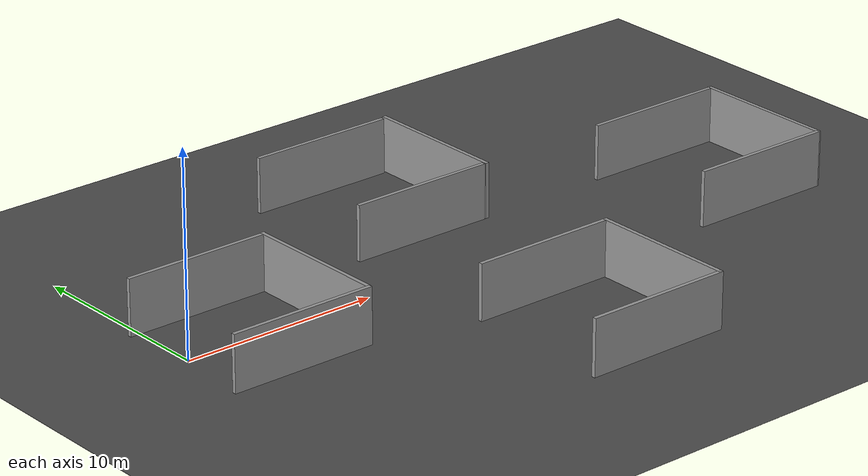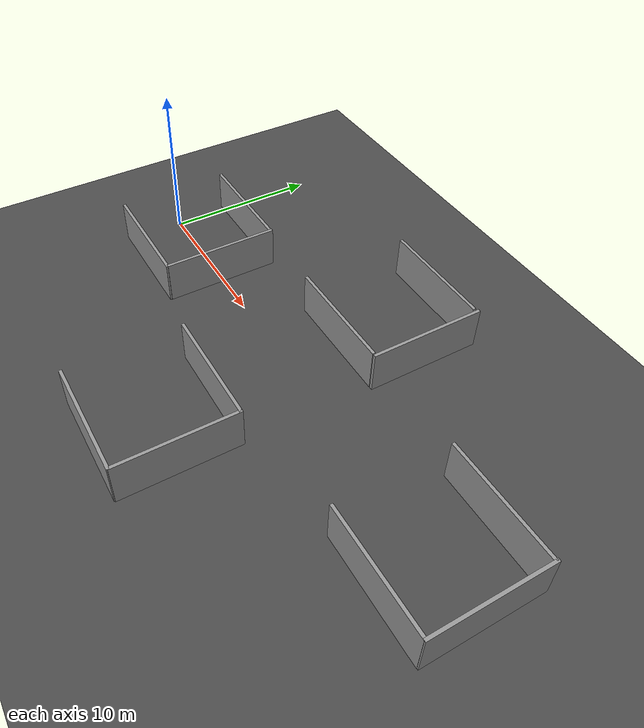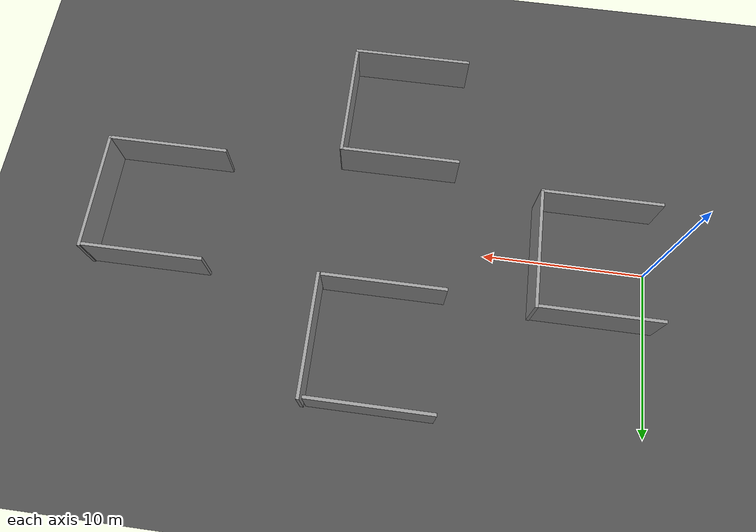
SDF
<sdf version="1.6">
 <world name="default">
  <scene>
   <sky><clouds><speed>20</speed></clouds></sky>
   <ambient>0.4 0.4 0.4 1</ambient>
   <background>0.7 0.7 0.7 1</background>
   <shadows>1</shadows>
  </scene>
  <light name="sun" type="directional">
   <pose>0 0 10 0 -0 0</pose>
   <diffuse>0.8 0.8 0.8 1</diffuse>
   <specular>0.1 0.1 0.1 1</specular>
   <attenuation>
    <range>1000</range>
    <constant>0.9</constant>
    <linear>0.01</linear>
    <quadratic>0.001</quadratic>
   </attenuation>
   <direction>-0.5 0.5 -1</direction>
  </light>
  <model name="asphalt_plane">
   <pose>0.103434 0.05762 0 0 -0 0</pose>
   <static>1</static>
   <link name="link">
    <collision name="collision"><geometry><box><size>10131.8 10000 0.01</size></box></geometry></collision>
    <visual name="visual">
     <cast_shadows>0</cast_shadows>
     <geometry><box><size>101.318 100 0.01</size></box></geometry>
     <material>
      <script>
       <uri>file:///home/jtorde/Desktop/ws/src/acl-ros-extra-v2/acl_sim/urdf/grass/materials/scripts</uri>
       <uri>file:///home/jtorde/Desktop/ws/src/acl-ros-extra-v2/acl_sim/urdf/grass/materials/textures</uri>
       <name>vrc/asphalt</name>
      </script>
     </material>
    </visual>
   </link>
  </model>
  <gravity>0 0 -9.8</gravity>
  <magnetic_field>6e-06 2.3e-05 -4.2e-05</magnetic_field>
  <atmosphere type="adiabatic"/>
  <physics name="default_physics" default="0" type="ode">
   <max_step_size>0.001</max_step_size>
   <real_time_factor>1</real_time_factor>
   <real_time_update_rate>1000</real_time_update_rate>
  </physics>
  <spherical_coordinates>
   <surface_model>EARTH_WGS84</surface_model>
   <latitude_deg>0</latitude_deg>
   <longitude_deg>0</longitude_deg>
   <elevation>0</elevation>
   <heading_deg>0</heading_deg>
  </spherical_coordinates>
  <light name="user_directional_light_0" type="directional">
   <pose>34.9855 -1.80031 1 0 -0 0</pose>
   <diffuse>0.5 0.5 0.5 1</diffuse>
   <specular>0.1 0.1 0.1 1</specular>
   <direction>0.1 0.1 -0.9</direction>
   <attenuation>
    <range>20</range>
    <constant>0.5</constant>
    <linear>0.01</linear>
    <quadratic>0.001</quadratic>
   </attenuation>
  </light>
  <light name="user_directional_light_1" type="directional">
   <pose>65.0809 -34.7744 1 0 -0 0</pose>
   <diffuse>0.5 0.5 0.5 1</diffuse>
   <specular>0.1 0.1 0.1 1</specular>
   <direction>0.1 0.1 -0.9</direction>
   <attenuation>
    <range>20</range>
    <constant>0.5</constant>
    <linear>0.01</linear>
    <quadratic>0.001</quadratic>
   </attenuation>
  </light>
  <light name="user_directional_light_2" type="directional">
   <pose>27.7796 -25.3494 1 0 -0 0</pose>
   <diffuse>0.5 0.5 0.5 1</diffuse>
   <specular>0.1 0.1 0.1 1</specular>
   <direction>0.1 0.1 -0.9</direction>
   <attenuation>
    <range>20</range>
    <constant>0.5</constant>
    <linear>0.01</linear>
    <quadratic>0.001</quadratic>
   </attenuation>
  </light>
  <model name="grey_wall">
   <static>1</static>
   <link name="link">
    <pose>0 0 1.4 0 -0 0</pose>
    <collision name="collision"><geometry><box><size>7.5 0.2 2.8</size></box></geometry></collision>
    <visual name="visual">
     <cast_shadows>0</cast_shadows>
     <geometry><box><size>7.5 0.2 2.8</size></box></geometry>
     <material>
      <script>
       <uri>model://grey_wall/materials/scripts</uri>
       <uri>model://grey_wall/materials/textures</uri>
       <name>vrc/grey_wall</name>
      </script>
     </material>
    </visual>
   </link>
   <pose>3.26061 3.63488 -0.002785 0 -0 0</pose>
  </model>
  <model name="grey_wall_clone">
   <static>1</static>
   <link name="link">
    <pose>0 0 1.4 0 -0 0</pose>
    <collision name="collision"><geometry><box><size>7.5 0.2 2.8</size></box></geometry></collision>
    <visual name="visual">
     <cast_shadows>0</cast_shadows>
     <geometry><box><size>7.5 0.2 2.8</size></box></geometry>
     <material>
      <script>
       <uri>model://grey_wall/materials/scripts</uri>
       <uri>model://grey_wall/materials/textures</uri>
       <name>vrc/grey_wall</name>
      </script>
     </material>
    </visual>
   </link>
   <pose>7.00157 0.018635 0 0 0 -1.56755</pose>
  </model>
  <model name="grey_wall_clone_0">
   <static>1</static>
   <link name="link">
    <pose>0 0 1.4 0 -0 0</pose>
    <collision name="collision"><geometry><box><size>7.5 0.2 2.8</size></box></geometry></collision>
    <visual name="visual">
     <cast_shadows>0</cast_shadows>
     <geometry><box><size>7.5 0.2 2.8</size></box></geometry>
     <material>
      <script>
       <uri>model://grey_wall/materials/scripts</uri>
       <uri>model://grey_wall/materials/textures</uri>
       <name>vrc/grey_wall</name>
      </script>
     </material>
    </visual>
   </link>
   <pose>3.34201 -3.74474 0 0 -0 0</pose>
  </model>
  <model name="grey_wall_clone_0_clone">
   <static>1</static>
   <link name="link">
    <pose>0 0 1.4 0 -0 0</pose>
    <collision name="collision"><geometry><box><size>7.5 0.2 2.8</size></box></geometry></collision>
    <visual name="visual">
     <cast_shadows>0</cast_shadows>
     <geometry><box><size>7.5 0.2 2.8</size></box></geometry>
     <material>
      <script>
       <uri>model://grey_wall/materials/scripts</uri>
       <uri>model://grey_wall/materials/textures</uri>
       <name>vrc/grey_wall</name>
      </script>
     </material>
    </visual>
   </link>
   <pose>16.0288 -12.4063 0 0 -0 0</pose>
  </model>
  <model name="grey_wall_clone_clone">
   <static>1</static>
   <link name="link">
    <pose>0 0 1.4 0 -0 0</pose>
    <collision name="collision"><geometry><box><size>7.5 0.2 2.8</size></box></geometry></collision>
    <visual name="visual">
     <cast_shadows>0</cast_shadows>
     <geometry><box><size>7.5 0.2 2.8</size></box></geometry>
     <material>
      <script>
       <uri>model://grey_wall/materials/scripts</uri>
       <uri>model://grey_wall/materials/textures</uri>
       <name>vrc/grey_wall</name>
      </script>
     </material>
    </visual>
   </link>
   <pose>19.7036 -8.69414 0 0 0 -1.56755</pose>
  </model>
  <model name="grey_wall_clone_1">
   <static>1</static>
   <link name="link">
    <pose>0 0 1.4 0 -0 0</pose>
    <collision name="collision"><geometry><box><size>7.5 0.2 2.8</size></box></geometry></collision>
    <visual name="visual">
     <cast_shadows>0</cast_shadows>
     <geometry><box><size>7.5 0.2 2.8</size></box></geometry>
     <material>
      <script>
       <uri>model://grey_wall/materials/scripts</uri>
       <uri>model://grey_wall/materials/textures</uri>
       <name>vrc/grey_wall</name>
      </script>
     </material>
    </visual>
   </link>
   <pose>15.9951 -5.0315 0 0 -0 0</pose>
  </model>
  <model name="grey_wall_clone_1_clone">
   <static>1</static>
   <link name="link">
    <pose>0 0 1.4 0 -0 0</pose>
    <collision name="collision"><geometry><box><size>7.5 0.2 2.8</size></box></geometry></collision>
    <visual name="visual">
     <cast_shadows>0</cast_shadows>
     <geometry><box><size>7.5 0.2 2.8</size></box></geometry>
     <material>
      <script>
       <uri>model://grey_wall/materials/scripts</uri>
       <uri>model://grey_wall/materials/textures</uri>
       <name>vrc/grey_wall</name>
      </script>
     </material>
    </visual>
   </link>
   <pose>15.9199 3.3619 0 0 -0 0</pose>
  </model>
  <model name="grey_wall_clone_0_clone_clone">
   <static>1</static>
   <link name="link">
    <pose>0 0 1.4 0 -0 0</pose>
    <collision name="collision"><geometry><box><size>7.5 0.2 2.8</size></box></geometry></collision>
    <visual name="visual">
     <cast_shadows>0</cast_shadows>
     <geometry><box><size>7.5 0.2 2.8</size></box></geometry>
     <material>
      <script>
       <uri>model://grey_wall/materials/scripts</uri>
       <uri>model://grey_wall/materials/textures</uri>
       <name>vrc/grey_wall</name>
      </script>
     </material>
    </visual>
   </link>
   <pose>15.8182 10.5952 0 0 -0 0</pose>
  </model>
  <model name="grey_wall_clone_clone_clone">
   <static>1</static>
   <link name="link">
    <pose>0 0 1.4 0 -0 0</pose>
    <collision name="collision"><geometry><box><size>7.5 0.2 2.8</size></box></geometry></collision>
    <visual name="visual">
     <cast_shadows>0</cast_shadows>
     <geometry><box><size>7.5 0.2 2.8</size></box></geometry>
     <material>
      <script>
       <uri>model://grey_wall/materials/scripts</uri>
       <uri>model://grey_wall/materials/textures</uri>
       <name>vrc/grey_wall</name>
      </script>
     </material>
    </visual>
   </link>
   <pose>19.8099 7.0191 0 0 0 -1.56755</pose>
  </model>
  <model name="grey_wall_clone_clone_clone_0">
   <static>1</static>
   <link name="link">
    <pose>0 0 1.4 0 -0 0</pose>
    <collision name="collision"><geometry><box><size>7.5 0.2 2.8</size></box></geometry></collision>
    <visual name="visual">
     <cast_shadows>0</cast_shadows>
     <geometry><box><size>7.5 0.2 2.8</size></box></geometry>
     <material>
      <script>
       <uri>model://grey_wall/materials/scripts</uri>
       <uri>model://grey_wall/materials/textures</uri>
       <name>vrc/grey_wall</name>
      </script>
     </material>
    </visual>
   </link>
   <pose>34.284 -0.209497 0 0 0 -1.56755</pose>
  </model>
  <model name="grey_wall_clone_1_clone_0">
   <static>1</static>
   <link name="link">
    <pose>0 0 1.4 0 -0 0</pose>
    <collision name="collision"><geometry><box><size>7.5 0.2 2.8</size></box></geometry></collision>
    <visual name="visual">
     <cast_shadows>0</cast_shadows>
     <geometry><box><size>7.5 0.2 2.8</size></box></geometry>
     <material>
      <script>
       <uri>model://grey_wall/materials/scripts</uri>
       <uri>model://grey_wall/materials/textures</uri>
       <name>vrc/grey_wall</name>
      </script>
     </material>
    </visual>
   </link>
   <pose>30.5349 3.38296 0 0 -0 0</pose>
  </model>
  <model name="grey_wall_clone_0_clone_clone_0">
   <static>1</static>
   <link name="link">
    <pose>0 0 1.4 0 -0 0</pose>
    <collision name="collision"><geometry><box><size>7.5 0.2 2.8</size></box></geometry></collision>
    <visual name="visual">
     <cast_shadows>0</cast_shadows>
     <geometry><box><size>7.5 0.2 2.8</size></box></geometry>
     <material>
      <script>
       <uri>model://grey_wall/materials/scripts</uri>
       <uri>model://grey_wall/materials/textures</uri>
       <name>vrc/grey_wall</name>
      </script>
     </material>
    </visual>
   </link>
   <pose>30.5586 -3.87773 0 0 -0 0</pose>
  </model>
 </world>
</sdf>
